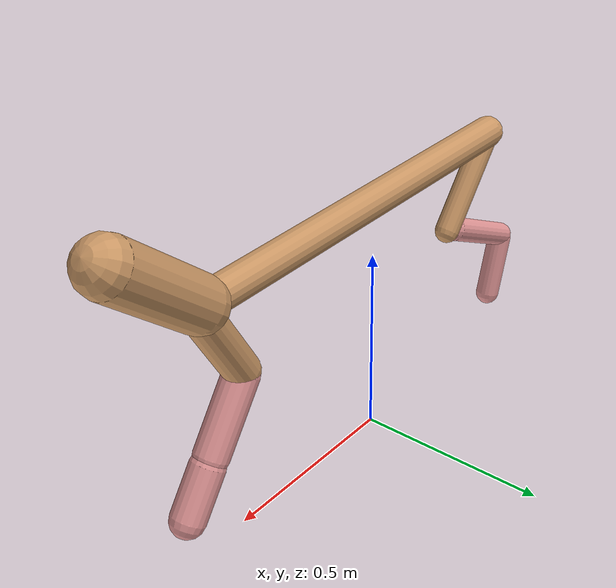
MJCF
<mujoco model="cheetah">
  <compiler angle="radian" coordinate="local" inertiafromgeom="true" settotalmass="14" />
  <default>
    <joint armature=".1" damping=".01" limited="true" solimplimit="0 .8 .03" solreflimit=".02 1" stiffness="8" />
    <geom conaffinity="0" condim="3" contype="1" friction="0.8 .1 .1" rgba="0.8 0.6 .4 1" solimp="0.0 0.8 0.01" solref="0.02 1" />
    <motor ctrllimited="true" ctrlrange="-1 1" />
  </default>
  <size nstack="300000" nuser_geom="1" />
  <option gravity="0 0 -9.81" timestep="0.01" />
  <worldbody>
    <body name="torso" pos="0.0 0.0 0.6504749767655378">
      <joint armature="0" axis="1 0 0" damping="0" limited="false" name="ignorex" pos="0 0 0" stiffness="0" type="slide" />
      <joint armature="0" axis="0 0 1" damping="0" limited="false" name="ignorez" pos="0 0 0" stiffness="0" type="slide" />
      <joint armature="0" axis="0 1 0" damping="0" limited="false" name="ignorey" pos="0 0 0" stiffness="0" type="hinge" />
      <geom fromto="-0.5 0.0 0.0 0.6070126057762346 0.0 0.0" name="torso" size="0.0414695650203427" type="capsule" />
      <geom axisangle="0 1 0 .87" name="head" pos="0.7070126057762346 0.0 0.1" size="0.06722522691719644 0.15" type="capsule" />

      <body name="bthigh" pos="-.5 0 0">
        <joint axis="0 1 0" damping="6" name="bthigh" pos="0 0 0" range="-.52 1.05" stiffness="240" type="hinge" />
        <geom axisangle="0 1 0 -3.8" name="bthigh" pos="0.09162093753432082 0.0 -0.11910721879461707" size="0.0322 0.1312573157573894" type="capsule" />
        <body name="bshin" pos="0.14324187506864164 0.0 -0.22821443758923413">
          <joint axis="0 1 0" damping="4.5" name="bshin" pos="0 0 0" range="-.785 .785" stiffness="180" type="hinge" />
          <geom axisangle="0 1 0 -2.03" name="bshin" pos="-0.12728431331318932 0.0 -0.06364215665659466" rgba="0.9 0.6 0.6 1" size="0.0322 0.1357834300938511" type="capsule" />
          <body name="bfoot" pos="-0.25456862662637864 0.0 -0.12728431331318932">
            <joint axis="0 1 0" damping="3" name="bfoot" pos="0 0 0" range="-.4 .785" stiffness="120" type="hinge" />
            <geom axisangle="0 1 0 -.27" name="bfoot" pos="0.027367645324794868 0.0 -0.0884887198835034" rgba="0.9 0.6 0.6 1" size="0.0322 0.08509094952548002" type="capsule" />
            <inertial mass="10" />
          </body>
        </body>
      </body>
      <body name="fthigh" pos="0.6070126057762346 0.0 0.0">
        <joint axis="0 1 0" damping="4.5" name="fthigh" pos="0 0 0" range="-1.5 0.8" stiffness="180" type="hinge" />
        <geom axisangle="0 1 0 .52" name="fthigh" pos="-0.0665283349113477 0.0 -0.1140485741337389" size="0.04358593996079327 0.1261100124579671" type="capsule" />
        <body name="fshin" pos="-0.1330566698226954 0.0 -0.2280971482674778">
          <joint axis="0 1 0" damping="3" name="fshin" pos="0 0 0" range="-1.2 1.1" stiffness="120" type="hinge" />
          <geom axisangle="0 1 0 -.6" name="fshin" pos="0.061784914301290586 0.0 -0.08554834287871003" rgba="0.9 0.6 0.6 1" size="0.04358593996079327 0.10050873173341737" type="capsule" />
          <body name="ffoot" pos="0.12356982860258117 0.0 -0.17109668575742007">
            <joint axis="0 1 0" damping="1.5" name="ffoot" pos="0 0 0" range="-3.1 -0.3" stiffness="60" type="hinge" />
            <geom axisangle="0 1 0 -.6" name="ffoot" pos="0.04303904575399488 0.0 -0.06694962672843648" rgba="0.9 0.6 0.6 1" size="0.04358593996079327 0.0663736907673511" type="capsule" />
            <inertial mass="10" />
          </body>
        </body>
      </body>
    </body>
  </worldbody>
  <actuator>
    <motor gear="120" joint="bthigh" name="bthigh" />
    <motor gear="90" joint="bshin" name="bshin" />
    <motor gear="60" joint="bfoot" name="bfoot" />
    <motor gear="120" joint="fthigh" name="fthigh" />
    <motor gear="60" joint="fshin" name="fshin" />
    <motor gear="30" joint="ffoot" name="ffoot" />
  </actuator>
</mujoco>
